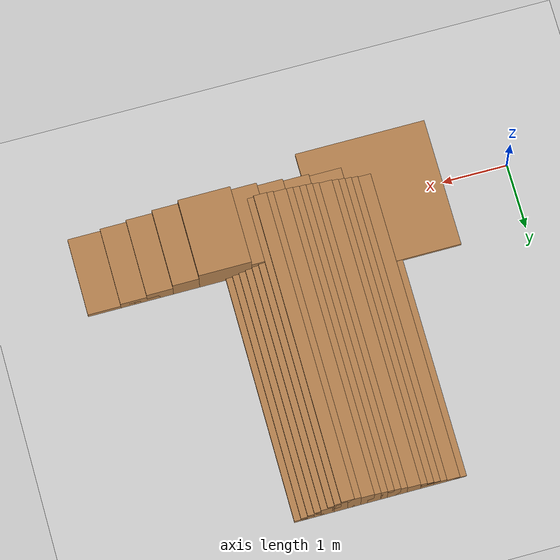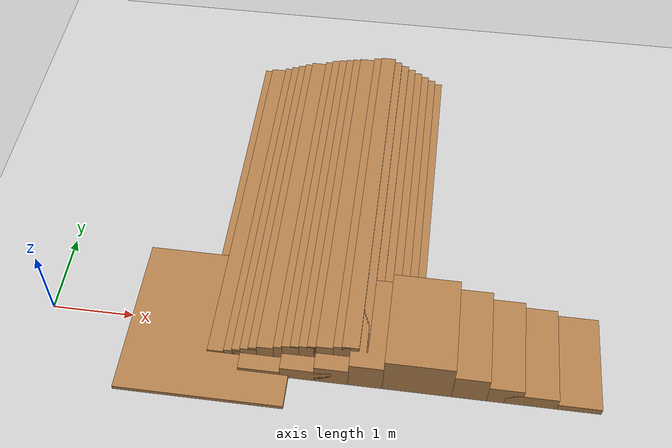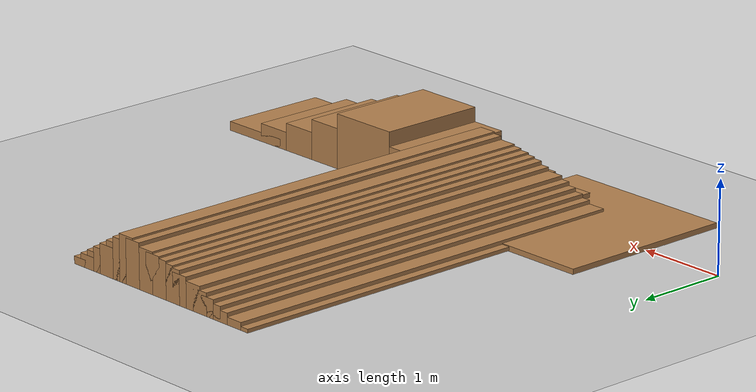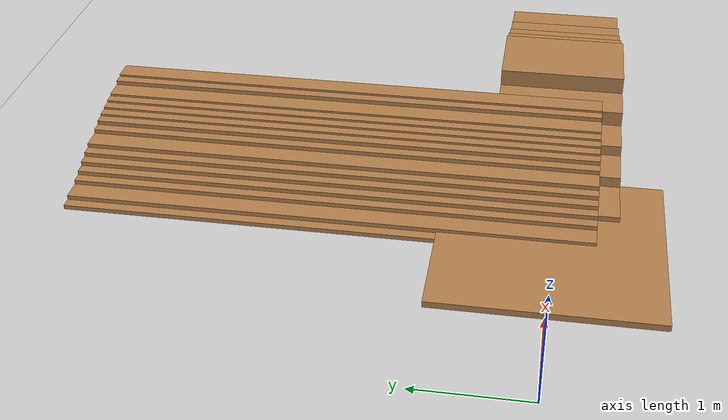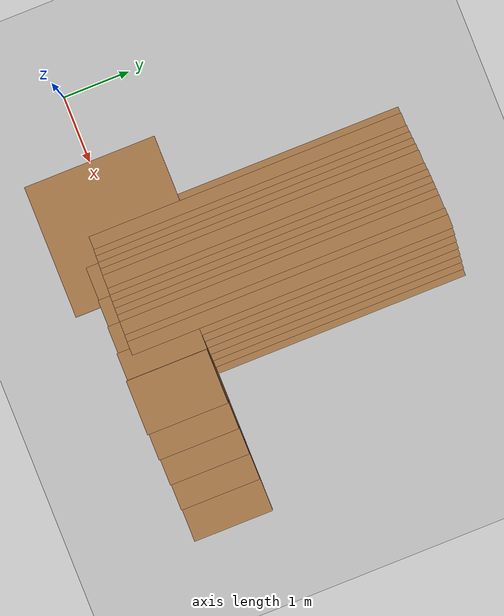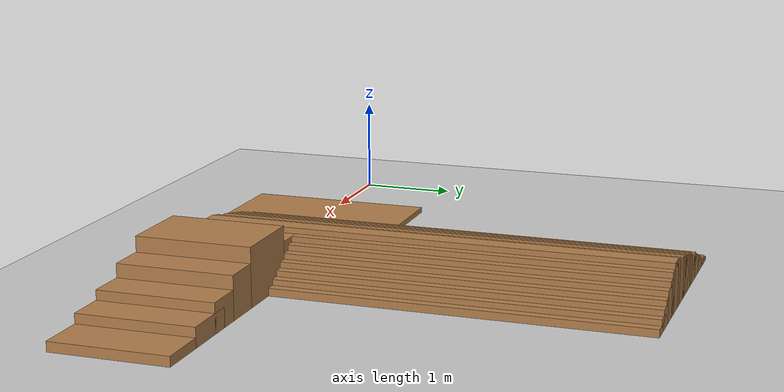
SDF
<?xml version="1.0"?>
<sdf version="1.5">
    <world name="default">

        <plugin name="gazebo_ros_state" filename="libgazebo_ros_state.so">
            <ros>
                <namespace>/gazebo</namespace>
            </ros>
        </plugin>

        <physics type="ode">
            <max_step_size>0.001</max_step_size>
            <real_time_factor>1</real_time_factor>
            <real_time_update_rate>1000</real_time_update_rate>
            <gravity>0 0 -9.81</gravity>
            <ode>
                <solver>
                    <type>quick</type>
                    <iters>150</iters>
                    <sor>1.3</sor>
                </solver>
                <constraints>
                    <cfm>1e-6</cfm>
                    <erp>0.8</erp>
                    <contact_max_correcting_vel>0.1</contact_max_correcting_vel>
                    <contact_surface_layer>0.005</contact_surface_layer>
                </constraints>
            </ode>
        </physics>

        <scene>
            <sky>
                <clouds>
                    <speed>12</speed>
                </clouds>
            </sky>
        </scene>
        <include>
            <uri>model://sun</uri>
        </include>
        <include>
            <uri>model://ground_plane</uri>
        </include>

        <model name="step1">
            <pose>2 0 0.0 0 0 0</pose>
            <static>true</static>
            <link name="link">
                <collision name="collision">
                    <geometry>
                        <box>
                            <size>2.0 2.0 0.1</size>
                        </box>
                    </geometry>
                </collision>
                <visual name="visual">
                    <geometry>
                        <box>
                            <size>2.0 2.0 0.1</size>
                        </box>
                    </geometry>
                    <material>
                        <script>
                            <uri>file://media/materials/scripts/gazebo.material</uri>
                            <name>Gazebo/Wood</name>
                        </script>
                    </material>
                </visual>
            </link>
        </model>

        <model name="step2_1">
            <pose>6.2 0 0.05 0 0 0</pose>
            <static>true</static>
            <link name="link">
                <collision name="collision">
                    <geometry>
                        <box>
                            <size>0.8 1.2 0.1</size>
                        </box>
                    </geometry>
                </collision>
                <visual name="visual">
                    <geometry>
                        <box>
                            <size>0.8 1.2 0.1</size>
                        </box>
                    </geometry>
                    <material>
                        <script>
                            <uri>file://media/materials/scripts/gazebo.material</uri>
                            <name>Gazebo/Wood</name>
                        </script>
                    </material>
                </visual>
            </link>
        </model>

        <model name="step2_2">
            <pose>5.8 0 0.1 0 0 0</pose>
            <static>true</static>
            <link name="link">
                <collision name="collision">
                    <geometry>
                        <box>
                            <size>0.6 1.2 0.2</size>
                        </box>
                    </geometry>
                </collision>
                <visual name="visual">
                    <geometry>
                        <box>
                            <size>0.6 1.2 0.2</size>
                        </box>
                    </geometry>
                    <material>
                        <script>
                            <uri>file://media/materials/scripts/gazebo.material</uri>
                            <name>Gazebo/Wood</name>
                        </script>
                    </material>
                </visual>
            </link>
        </model>

        <model name="step2_3">
            <pose>5.5 0 0.15 0 0 0</pose>
            <static>true</static>
            <link name="link">
                <collision name="collision">
                    <geometry>
                        <box>
                            <size>0.4 1.2 0.3</size>
                        </box>
                    </geometry>
                </collision>
                <visual name="visual">
                    <geometry>
                        <box>
                            <size>0.4 1.2 0.3</size>
                        </box>
                    </geometry>
                    <material>
                        <script>
                            <uri>file://media/materials/scripts/gazebo.material</uri>
                            <name>Gazebo/Wood</name>
                        </script>
                    </material>
                </visual>
            </link>
        </model>

        <model name="step2_4">
            <pose>5.1 0 0.22 0 0 0</pose>
            <static>true</static>
            <link name="link">
                <collision name="collision">
                    <geometry>
                        <box>
                            <size>0.4 1.2 0.44</size>
                        </box>
                    </geometry>
                </collision>
                <visual name="visual">
                    <geometry>
                        <box>
                            <size>0.4 1.2 0.44</size>
                        </box>
                    </geometry>
                    <material>
                        <script>
                            <uri>file://media/materials/scripts/gazebo.material</uri>
                            <name>Gazebo/Wood</name>
                        </script>
                    </material>
                </visual>
            </link>
        </model>

        <model name="step2_5">
            <pose>4.5 0 0.3 0 0 0</pose>
            <static>true</static>
            <link name="link">
                <collision name="collision">
                    <geometry>
                        <box>
                            <size>0.8 1.2 0.6</size>
                        </box>
                    </geometry>
                </collision>
                <visual name="visual">
                    <geometry>
                        <box>
                            <size>0.8 1.2 0.6</size>
                        </box>
                    </geometry>
                    <material>
                        <script>
                            <uri>file://media/materials/scripts/gazebo.material</uri>
                            <name>Gazebo/Wood</name>
                        </script>
                    </material>
                </visual>
            </link>
        </model>

        <model name="step2_6">
            <pose>3.9 0 0.22 0 0 0</pose>
            <static>true</static>
            <link name="link">
                <collision name="collision">
                    <geometry>
                        <box>
                            <size>0.4 1.2 0.44</size>
                        </box>
                    </geometry>
                </collision>
                <visual name="visual">
                    <geometry>
                        <box>
                            <size>0.4 1.2 0.44</size>
                        </box>
                    </geometry>
                    <material>
                        <script>
                            <uri>file://media/materials/scripts/gazebo.material</uri>
                            <name>Gazebo/Wood</name>
                        </script>
                    </material>
                </visual>
            </link>
        </model>

        <model name="step2_7">
            <pose>3.5 0 0.15 0 0 0</pose>
            <static>true</static>
            <link name="link">
                <collision name="collision">
                    <geometry>
                        <box>
                            <size>0.4 1.2 0.3</size>
                        </box>
                    </geometry>
                </collision>
                <visual name="visual">
                    <geometry>
                        <box>
                            <size>0.4 1.2 0.3</size>
                        </box>
                    </geometry>
                    <material>
                        <script>
                            <uri>file://media/materials/scripts/gazebo.material</uri>
                            <name>Gazebo/Wood</name>
                        </script>
                    </material>
                </visual>
            </link>
        </model>

        <model name="step2_8">
            <pose>3.2 0 0.1 0 0 0</pose>
            <static>true</static>
            <link name="link">
                <collision name="collision">
                    <geometry>
                        <box>
                            <size>0.6 1.2 0.2</size>
                        </box>
                    </geometry>
                </collision>
                <visual name="visual">
                    <geometry>
                        <box>
                            <size>0.6 1.2 0.2</size>
                        </box>
                    </geometry>
                    <material>
                        <script>
                            <uri>file://media/materials/scripts/gazebo.material</uri>
                            <name>Gazebo/Wood</name>
                        </script>
                    </material>
                </visual>
            </link>
        </model>

        <model name="step2_9">
            <pose>2.8 0 0.05 0 0 0</pose>
            <static>true</static>
            <link name="link">
                <collision name="collision">
                    <geometry>
                        <box>
                            <size>0.8 1.2 0.1</size>
                        </box>
                    </geometry>
                </collision>
                <visual name="visual">
                    <geometry>
                        <box>
                            <size>0.8 1.2 0.1</size>
                        </box>
                    </geometry>
                    <material>
                        <script>
                            <uri>file://media/materials/scripts/gazebo.material</uri>
                            <name>Gazebo/Wood</name>
                        </script>
                    </material>
                </visual>
            </link>
        </model>

        <model name="step3_1">
            <pose>2 2 0.02 0 0 0</pose>
            <static>true</static>
            <link name="link">
                <collision name="collision">
                    <geometry>
                        <box>
                            <size>0.2 4.8 0.04</size>
                        </box>
                    </geometry>
                </collision>
                <visual name="visual">
                    <geometry>
                        <box>
                            <size>0.2 4.8 0.04</size>
                        </box>
                    </geometry>
                    <material>
                        <script>
                            <uri>file://media/materials/scripts/gazebo.material</uri>
                            <name>Gazebo/Wood</name>
                        </script>
                    </material>
                </visual>
            </link>
        </model>

        <model name="step3_2">
            <pose>2.1 2 0.04 0 0 0</pose>
            <static>true</static>
            <link name="link">
                <collision name="collision">
                    <geometry>
                        <box>
                            <size>0.2 4.8 0.08</size>
                        </box>
                    </geometry>
                </collision>
                <visual name="visual">
                    <geometry>
                        <box>
                            <size>0.2 4.8 0.08</size>
                        </box>
                    </geometry>
                    <material>
                        <script>
                            <uri>file://media/materials/scripts/gazebo.material</uri>
                            <name>Gazebo/Wood</name>
                        </script>
                    </material>
                </visual>
            </link>
        </model>

        <model name="step3_3">
            <pose>2.3 2 0.06 0 0 0</pose>
            <static>true</static>
            <link name="link">
                <collision name="collision">
                    <geometry>
                        <box>
                            <size>0.2 4.8 0.12</size>
                        </box>
                    </geometry>
                </collision>
                <visual name="visual">
                    <geometry>
                        <box>
                            <size>0.2 4.8 0.12</size>
                        </box>
                    </geometry>
                    <material>
                        <script>
                            <uri>file://media/materials/scripts/gazebo.material</uri>
                            <name>Gazebo/Wood</name>
                        </script>
                    </material>
                </visual>
            </link>
        </model>

        <model name="step3_4">
            <pose>2.4 2 0.08 0 0 0</pose>
            <static>true</static>
            <link name="link">
                <collision name="collision">
                    <geometry>
                        <box>
                            <size>0.2 4.8 0.16</size>
                        </box>
                    </geometry>
                </collision>
                <visual name="visual">
                    <geometry>
                        <box>
                            <size>0.2 4.8 0.16</size>
                        </box>
                    </geometry>
                    <material>
                        <script>
                            <uri>file://media/materials/scripts/gazebo.material</uri>
                            <name>Gazebo/Wood</name>
                        </script>
                    </material>
                </visual>
            </link>
        </model>

        <model name="step3_5">
            <pose>2.5 2 0.1 0 0 0</pose>
            <static>true</static>
            <link name="link">
                <collision name="collision">
                    <geometry>
                        <box>
                            <size>0.2 4.8 0.2</size>
                        </box>
                    </geometry>
                </collision>
                <visual name="visual">
                    <geometry>
                        <box>
                            <size>0.2 4.8 0.2</size>
                        </box>
                    </geometry>
                    <material>
                        <script>
                            <uri>file://media/materials/scripts/gazebo.material</uri>
                            <name>Gazebo/Wood</name>
                        </script>
                    </material>
                </visual>
            </link>
        </model>

        <model name="step3_6">
            <pose>2.6 2 0.12 0 0 0</pose>
            <static>true</static>
            <link name="link">
                <collision name="collision">
                    <geometry>
                        <box>
                            <size>0.2 4.8 0.24</size>
                        </box>
                    </geometry>
                </collision>
                <visual name="visual">
                    <geometry>
                        <box>
                            <size>0.2 4.8 0.24</size>
                        </box>
                    </geometry>
                    <material>
                        <script>
                            <uri>file://media/materials/scripts/gazebo.material</uri>
                            <name>Gazebo/Wood</name>
                        </script>
                    </material>
                </visual>
            </link>
        </model>

        <model name="step3_7">
            <pose>2.7 2 0.14 0 0 0</pose>
            <static>true</static>
            <link name="link">
                <collision name="collision">
                    <geometry>
                        <box>
                            <size>0.2 4.8 0.28</size>
                        </box>
                    </geometry>
                </collision>
                <visual name="visual">
                    <geometry>
                        <box>
                            <size>0.2 4.8 0.28</size>
                        </box>
                    </geometry>
                    <material>
                        <script>
                            <uri>file://media/materials/scripts/gazebo.material</uri>
                            <name>Gazebo/Wood</name>
                        </script>
                    </material>
                </visual>
            </link>
        </model>

        <model name="step3_8">
            <pose>2.9 2 0.16 0 0 0</pose>
            <static>true</static>
            <link name="link">
                <collision name="collision">
                    <geometry>
                        <box>
                            <size>0.2 4.8 0.32</size>
                        </box>
                    </geometry>
                </collision>
                <visual name="visual">
                    <geometry>
                        <box>
                            <size>0.2 4.8 0.32</size>
                        </box>
                    </geometry>
                    <material>
                        <script>
                            <uri>file://media/materials/scripts/gazebo.material</uri>
                            <name>Gazebo/Wood</name>
                        </script>
                    </material>
                </visual>
            </link>
        </model>

        <model name="step3_9">
            <pose>3 2 0.18 0 0 0</pose>
            <static>true</static>
            <link name="link">
                <collision name="collision">
                    <geometry>
                        <box>
                            <size>0.2 4.8 0.36</size>
                        </box>
                    </geometry>
                </collision>
                <visual name="visual">
                    <geometry>
                        <box>
                            <size>0.2 4.8 0.36</size>
                        </box>
                    </geometry>
                    <material>
                        <script>
                            <uri>file://media/materials/scripts/gazebo.material</uri>
                            <name>Gazebo/Wood</name>
                        </script>
                    </material>
                </visual>
            </link>
        </model>

        <model name="step3_10">
            <pose>3.1 2 0.19 0 0 0</pose>
            <static>true</static>
            <link name="link">
                <collision name="collision">
                    <geometry>
                        <box>
                            <size>0.2 4.8 0.38</size>
                        </box>
                    </geometry>
                </collision>
                <visual name="visual">
                    <geometry>
                        <box>
                            <size>0.2 4.8 0.38</size>
                        </box>
                    </geometry>
                    <material>
                        <script>
                            <uri>file://media/materials/scripts/gazebo.material</uri>
                            <name>Gazebo/Wood</name>
                        </script>
                    </material>
                </visual>
            </link>
        </model>

        <model name="step3_11">
            <pose>3.2 2 0.2 0 0 0</pose>
            <static>true</static>
            <link name="link">
                <collision name="collision">
                    <geometry>
                        <box>
                            <size>0.2 4.8 0.4</size>
                        </box>
                    </geometry>
                </collision>
                <visual name="visual">
                    <geometry>
                        <box>
                            <size>0.2 4.8 0.4</size>
                        </box>
                    </geometry>
                    <material>
                        <script>
                            <uri>file://media/materials/scripts/gazebo.material</uri>
                            <name>Gazebo/Wood</name>
                        </script>
                    </material>
                </visual>
            </link>
        </model>

        <model name="step3_12">
            <pose>3.3 2 0.21 0 0 0</pose>
            <static>true</static>
            <link name="link">
                <collision name="collision">
                    <geometry>
                        <box>
                            <size>0.2 4.8 0.42</size>
                        </box>
                    </geometry>
                </collision>
                <visual name="visual">
                    <geometry>
                        <box>
                            <size>0.2 4.8 0.42</size>
                        </box>
                    </geometry>
                    <material>
                        <script>
                            <uri>file://media/materials/scripts/gazebo.material</uri>
                            <name>Gazebo/Wood</name>
                        </script>
                    </material>
                </visual>
            </link>
        </model>

        <model name="step3_13">
            <pose>3.4 2 0.22 0 0 0</pose>
            <static>true</static>
            <link name="link">
                <collision name="collision">
                    <geometry>
                        <box>
                            <size>0.2 4.8 0.44</size>
                        </box>
                    </geometry>
                </collision>
                <visual name="visual">
                    <geometry>
                        <box>
                            <size>0.2 4.8 0.44</size>
                        </box>
                    </geometry>
                    <material>
                        <script>
                            <uri>file://media/materials/scripts/gazebo.material</uri>
                            <name>Gazebo/Wood</name>
                        </script>
                    </material>
                </visual>
            </link>
        </model>

        <model name="step3_14">
            <pose>3.6 2 0.24 0 0 0</pose>
            <static>true</static>
            <link name="link">
                <collision name="collision">
                    <geometry>
                        <box>
                            <size>0.2 4.8 0.48</size>
                        </box>
                    </geometry>
                </collision>
                <visual name="visual">
                    <geometry>
                        <box>
                            <size>0.2 4.8 0.48</size>
                        </box>
                    </geometry>
                    <material>
                        <script>
                            <uri>file://media/materials/scripts/gazebo.material</uri>
                            <name>Gazebo/Wood</name>
                        </script>
                    </material>
                </visual>
            </link>
        </model>

        <model name="step3_15">
            <pose>3.7 2 0.25 0 0 0</pose>
            <static>true</static>
            <link name="link">
                <collision name="collision">
                    <geometry>
                        <box>
                            <size>0.2 4.8 0.5</size>
                        </box>
                    </geometry>
                </collision>
                <visual name="visual">
                    <geometry>
                        <box>
                            <size>0.2 4.8 0.5</size>
                        </box>
                    </geometry>
                    <material>
                        <script>
                            <uri>file://media/materials/scripts/gazebo.material</uri>
                            <name>Gazebo/Wood</name>
                        </script>
                    </material>
                </visual>
            </link>
        </model>

        <model name="step3_16">
            <pose>3.8 2 0.22 0 0 0</pose>
            <static>true</static>
            <link name="link">
                <collision name="collision">
                    <geometry>
                        <box>
                            <size>0.2 4.8 0.44</size>
                        </box>
                    </geometry>
                </collision>
                <visual name="visual">
                    <geometry>
                        <box>
                            <size>0.2 4.8 0.44</size>
                        </box>
                    </geometry>
                    <material>
                        <script>
                            <uri>file://media/materials/scripts/gazebo.material</uri>
                            <name>Gazebo/Wood</name>
                        </script>
                    </material>
                </visual>
            </link>
        </model>

        <model name="step3_17">
            <pose>3.9 2 0.19 0 0 0</pose>
            <static>true</static>
            <link name="link">
                <collision name="collision">
                    <geometry>
                        <box>
                            <size>0.2 4.8 0.38</size>
                        </box>
                    </geometry>
                </collision>
                <visual name="visual">
                    <geometry>
                        <box>
                            <size>0.2 4.8 0.38</size>
                        </box>
                    </geometry>
                    <material>
                        <script>
                            <uri>file://media/materials/scripts/gazebo.material</uri>
                            <name>Gazebo/Wood</name>
                        </script>
                    </material>
                </visual>
            </link>
        </model>

        <model name="step3_18">
            <pose>4 2 0.16 0 0 0</pose>
            <static>true</static>
            <link name="link">
                <collision name="collision">
                    <geometry>
                        <box>
                            <size>0.2 4.8 0.32</size>
                        </box>
                    </geometry>
                </collision>
                <visual name="visual">
                    <geometry>
                        <box>
                            <size>0.2 4.8 0.32</size>
                        </box>
                    </geometry>
                    <material>
                        <script>
                            <uri>file://media/materials/scripts/gazebo.material</uri>
                            <name>Gazebo/Wood</name>
                        </script>
                    </material>
                </visual>
            </link>
        </model>

        <model name="step3_19">
            <pose>4.1 2 0.13 0 0 0</pose>
            <static>true</static>
            <link name="link">
                <collision name="collision">
                    <geometry>
                        <box>
                            <size>0.2 4.8 0.26</size>
                        </box>
                    </geometry>
                </collision>
                <visual name="visual">
                    <geometry>
                        <box>
                            <size>0.2 4.8 0.26</size>
                        </box>
                    </geometry>
                    <material>
                        <script>
                            <uri>file://media/materials/scripts/gazebo.material</uri>
                            <name>Gazebo/Wood</name>
                        </script>
                    </material>
                </visual>
            </link>
        </model>

        <model name="step3_20">
            <pose>4.2 2 0.10 0 0 0</pose>
            <static>true</static>
            <link name="link">
                <collision name="collision">
                    <geometry>
                        <box>
                            <size>0.2 4.8 0.2</size>
                        </box>
                    </geometry>
                </collision>
                <visual name="visual">
                    <geometry>
                        <box>
                            <size>0.2 4.8 0.2</size>
                        </box>
                    </geometry>
                    <material>
                        <script>
                            <uri>file://media/materials/scripts/gazebo.material</uri>
                            <name>Gazebo/Wood</name>
                        </script>
                    </material>
                </visual>
            </link>
        </model>

        <model name="step3_21">
            <pose>4.3 2 0.07 0 0 0</pose>
            <static>true</static>
            <link name="link">
                <collision name="collision">
                    <geometry>
                        <box>
                            <size>0.2 4.8 0.14</size>
                        </box>
                    </geometry>
                </collision>
                <visual name="visual">
                    <geometry>
                        <box>
                            <size>0.2 4.8 0.14</size>
                        </box>
                    </geometry>
                    <material>
                        <script>
                            <uri>file://media/materials/scripts/gazebo.material</uri>
                            <name>Gazebo/Wood</name>
                        </script>
                    </material>
                </visual>
            </link>
        </model>

        <model name="step3_22">
            <pose>4.4 2 0.04 0 0 0</pose>
            <static>true</static>
            <link name="link">
                <collision name="collision">
                    <geometry>
                        <box>
                            <size>0.2 4.8 0.08</size>
                        </box>
                    </geometry>
                </collision>
                <visual name="visual">
                    <geometry>
                        <box>
                            <size>0.2 4.8 0.08</size>
                        </box>
                    </geometry>
                    <material>
                        <script>
                            <uri>file://media/materials/scripts/gazebo.material</uri>
                            <name>Gazebo/Wood</name>
                        </script>
                    </material>
                </visual>
            </link>
        </model>

    </world>
</sdf>
